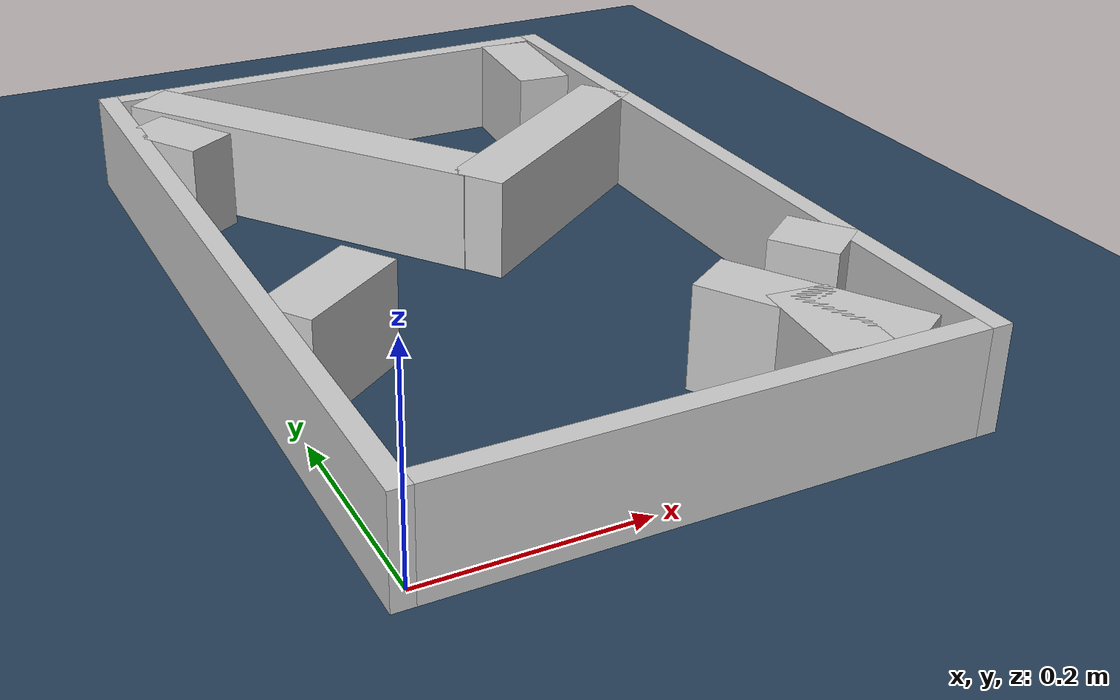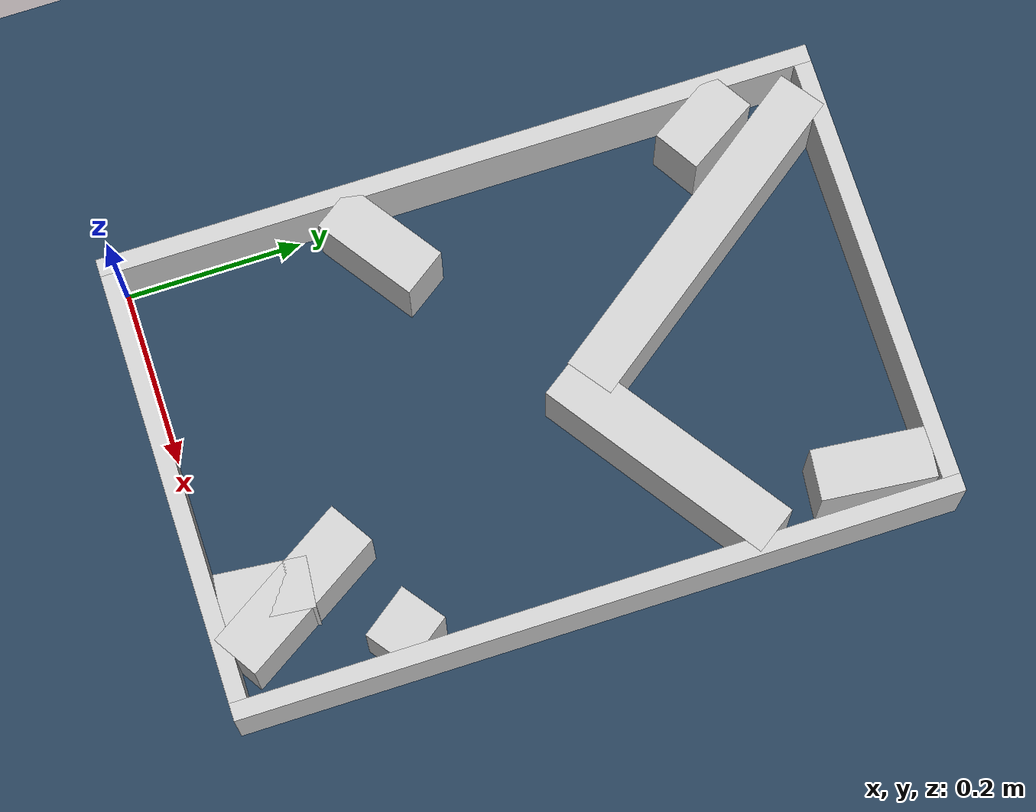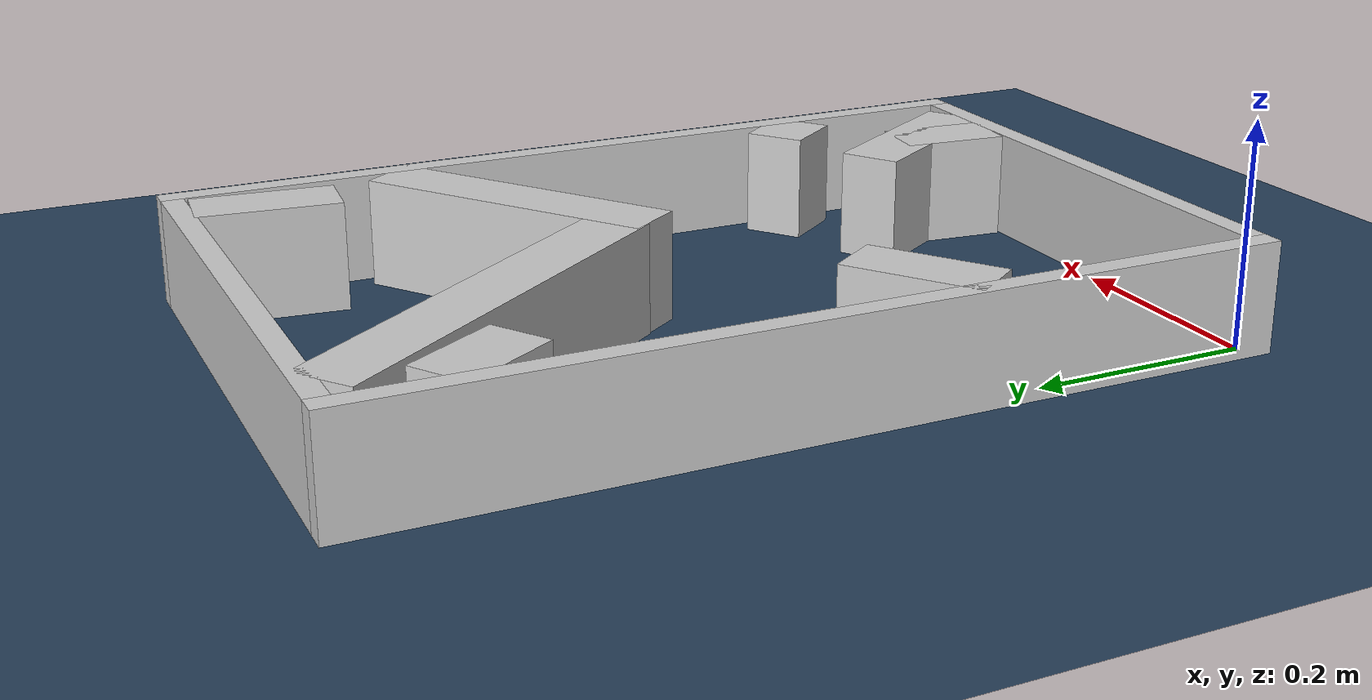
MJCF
<?xml version="1.0" ?>
<mujoco model="generated_real_template">
  <compiler angle="degree"/>
  <option timestep="0.002" integrator="implicitfast" iterations="100" cone="elliptic"/>
  <default>
    <geom density="1"/>
  </default>
  <asset>
    <texture builtin="gradient" height="3072" rgb1="0.3 0.5 0.7" rgb2="0 0 0" type="skybox" width="512"/>
    <texture builtin="checker" height="300" mark="edge" markrgb="0.8 0.8 0.8" name="groundplane" rgb1="0.2 0.3 0.4" rgb2="0.1 0.2 0.3" type="2d" width="300"/>
    <material name="groundplane" reflectance="0.2" texrepeat="5 5" texture="groundplane" texuniform="true"/>
  </asset>
  <worldbody>
    <light dir="0 0 -1" directional="true" pos="0 0 1.5"/>
    <geom name="floor" type="plane" condim="4" friction="0.5 0.005 0.001" material="groundplane" size="0 0 0.05"/>
    <body name="walls">
      <geom name="wall_boundary_left" type="box" condim="4" friction="1.0 0.005 0.0001" rgba="0.8 0.8 0.8 1" pos="-0.010000 0.387500 0.050000" euler="0 0 0.000000" size="0.010000 0.407500 0.050000"/>
      <geom name="wall_boundary_right" type="box" condim="4" friction="1.0 0.005 0.0001" rgba="0.8 0.8 0.8 1" pos="0.500000 0.387500 0.050000" euler="0 0 0.000000" size="0.010000 0.407500 0.050000"/>
      <geom name="wall_boundary_bottom" type="box" condim="4" friction="1.0 0.005 0.0001" rgba="0.8 0.8 0.8 1" pos="0.245000 -0.010000 0.050000" euler="0 0 0.000000" size="0.245000 0.010000 0.050000"/>
      <geom name="wall_boundary_top" type="box" condim="4" friction="1.0 0.005 0.0001" rgba="0.8 0.8 0.8 1" pos="0.245000 0.785000 0.050000" euler="0 0 0.000000" size="0.245000 0.010000 0.050000"/>
      <geom name="wall_inner_1_1" type="box" condim="4" friction="1.0 0.005 0.0001" rgba="0.8 0.8 0.8 1" pos="0.029168 0.659903 0.050000" euler="0 0 -57.805838" size="0.047014 0.028500 0.050000"/>
      <geom name="wall_inner_1_2" type="box" condim="4" friction="1.0 0.005 0.0001" rgba="0.8 0.8 0.8 1" pos="0.394207 0.080099 0.050000" euler="0 0 -57.805838" size="0.094652 0.028500 0.050000"/>
      <geom name="wall_inner_2_1" type="box" condim="4" friction="1.0 0.005 0.0001" rgba="0.8 0.8 0.8 1" pos="0.051431 0.281100 0.050000" euler="0 0 34.999507" size="0.062785 0.028500 0.050000"/>
      <geom name="wall_inner_2_2" type="box" condim="4" friction="1.0 0.005 0.0001" rgba="0.8 0.8 0.8 1" pos="0.372375 0.505824 0.050000" euler="0 0 34.999507" size="0.143592 0.028500 0.050000"/>
      <geom name="wall_inner_3_1" type="box" condim="4" friction="1.0 0.005 0.0001" rgba="0.8 0.8 0.8 1" pos="0.451904 0.711024 0.050000" euler="0 0 -95.671452" size="0.064291 0.028500 0.050000"/>
      <geom name="wall_inner_3_2" type="box" condim="4" friction="1.0 0.005 0.0001" rgba="0.8 0.8 0.8 1" pos="0.386287 0.050301 0.050000" euler="0 0 -95.671452" size="0.050549 0.028500 0.050000"/>
      <geom name="wall_inner_4_1" type="box" condim="4" friction="1.0 0.005 0.0001" rgba="0.8 0.8 0.8 1" pos="0.467773 0.181373 0.050000" euler="0 0 126.459753" size="0.032485 0.028500 0.050000"/>
      <geom name="wall_inner_4_2" type="box" condim="4" friction="1.0 0.005 0.0001" rgba="0.8 0.8 0.8 1" pos="0.149288 0.612413 0.050000" euler="0 0 126.459753" size="0.202153 0.028500 0.050000"/>
    </body>
  </worldbody>
</mujoco>
